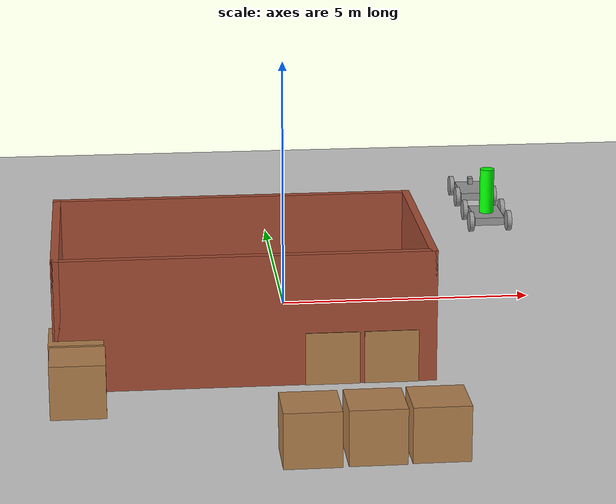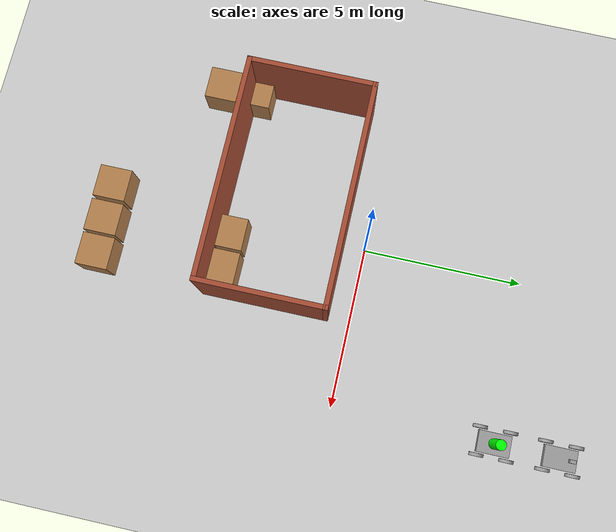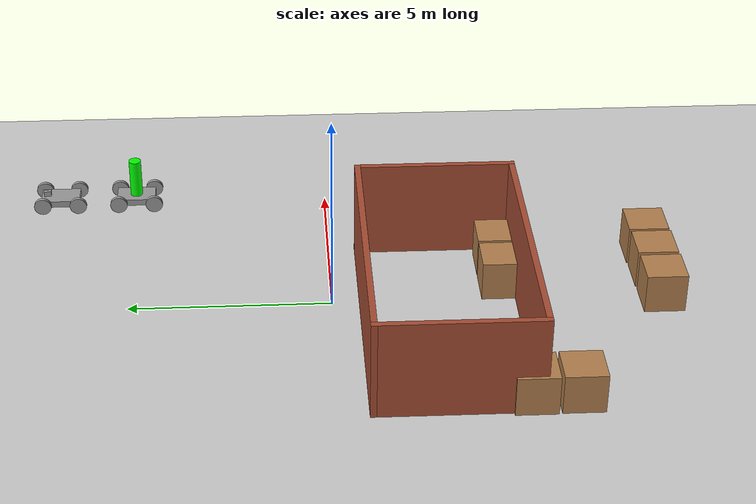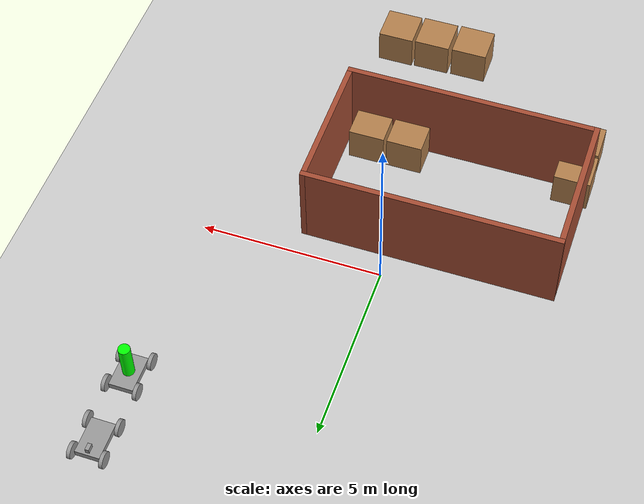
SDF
<sdf version="1.6">
 <world name="default">
  <light name="sun" type="directional">
   <pose>0 0 10 0 -0 0</pose>
   <diffuse>0.8 0.8 0.8 1</diffuse>
   <specular>0.2 0.2 0.2 1</specular>
   <attenuation>
    <range>1000</range>
    <constant>0.9</constant>
    <linear>0.01</linear>
    <quadratic>0.001</quadratic>
   </attenuation>
   <direction>-0.5 0.1 -0.9</direction>
  </light>
  <model name="ground_plane">
   <static>1</static>
   <link name="link">
    <collision name="collision">
     <geometry><plane><normal>0 0 1</normal><size>100 100</size></plane></geometry>
     <surface>
      <contact><collide_bitmask>65535</collide_bitmask></contact>
      <friction><ode><mu>100</mu><mu2>50</mu2></ode></friction>
     </surface>
    </collision>
    <visual name="visual">
     <cast_shadows>0</cast_shadows>
     <geometry><plane><normal>0 0 1</normal><size>100 100</size></plane></geometry>
     <material>
      <script><uri>file://media/materials/scripts/gazebo.material</uri><name>Gazebo/Grey</name></script>
     </material>
    </visual>
   </link>
  </model>
  <gravity>0 0 -9.8</gravity>
  <magnetic_field>6e-06 2.3e-05 -4.2e-05</magnetic_field>
  <atmosphere type="adiabatic"/>
  <physics name="default_physics" default="0" type="ode">
   <max_step_size>0.001</max_step_size>
   <real_time_factor>1</real_time_factor>
   <real_time_update_rate>1000</real_time_update_rate>
  </physics>
  <scene><ambient>0.4 0.4 0.4 1</ambient><background>0.7 0.7 0.7 1</background><shadows>1</shadows></scene>
  <audio><device>default</device></audio>
  <spherical_coordinates>
   <surface_model>EARTH_WGS84</surface_model>
   <latitude_deg>0</latitude_deg>
   <longitude_deg>0</longitude_deg>
   <elevation>0</elevation>
   <heading_deg>0</heading_deg>
  </spherical_coordinates>
  <include><name>nemo</name><pose>5 5 0.23 0 0 0</pose><uri>model://nemo</uri></include>
  <include><name>marlin</name><pose>5 7 0.23 0 0 0</pose><uri>model://marlin</uri></include>
  <include><name>house</name><uri>model://house</uri></include>
  <include><name>box1</name><pose>1.975860 -8.020435 0.500000 0 0 0</pose><uri>model://wood_box</uri></include>
  <include><name>box2</name><pose>0.893759 -8.048310 0.500000 0 0 0</pose><uri>model://wood_box</uri></include>
  <include><name>box3</name><pose>-0.210951 -8.069660 0.500000 0 0 0</pose><uri>model://wood_box</uri></include>
  <include><name>box4</name><pose>-4.115360 -5.482795 0.500000 0 0 0</pose><uri>model://wood_box</uri></include>
  <include><name>box5</name><pose>-4.138615 -4.409820 0.500000 0 0 0</pose><uri>model://wood_box</uri></include>
  <include><name>box6</name><pose>0.525398 -4.174735 0.500000 0 0 0</pose><uri>model://wood_box</uri></include>
  <include><name>box7</name><pose>1.610120 -4.172115 0.500000 0 0 0</pose><uri>model://wood_box</uri></include>
 </world>
</sdf>

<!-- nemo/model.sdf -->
<sdf version='1.6'>
  <model name='nemo'>
    <link name='link_1'>
      <inertial>
        <mass>5</mass>
        <inertia>
          <ixx>0.428684</ixx>
          <ixy>0</ixy>
          <ixz>0</ixz>
          <iyy>0.190336</iyy>
          <iyz>0</iyz>
          <izz>0.594986</izz>
        </inertia>
        <pose frame=''>0 0 0 0 -0 0</pose>
      </inertial>
      <pose frame=''>-0 0.00914 -0.007545 0 -0 0</pose>
      <gravity>1</gravity>
      <self_collide>0</self_collide>
      <kinematic>0</kinematic>
      <enable_wind>0</enable_wind>
      <visual name='visual'>
        <pose frame=''>0 0 0 0 -0 0</pose>
        <geometry>
          <box>
            <size>0.654191 1 0.169826</size>
          </box>
        </geometry>
        <material>
          <lighting>1</lighting>
          <script>
            <uri>file://media/materials/scripts/gazebo.material</uri>
            <name>Gazebo/Grey</name>
          </script>
          <shader type='vertex'>
            <normal_map>__default__</normal_map>
          </shader>
          <ambient>0.3 0.3 0.3 1</ambient>
          <diffuse>0.7 0.7 0.7 1</diffuse>
          <specular>0.01 0.01 0.01 1</specular>
          <emissive>0 0 0 1</emissive>
        </material>
        <transparency>0</transparency>
        <cast_shadows>1</cast_shadows>
      </visual>
      <collision name='collision'>
        <laser_retro>0</laser_retro>
        <max_contacts>10</max_contacts>
        <pose frame=''>0 0 0 0 -0 0</pose>
        <geometry>
          <box>
            <size>0.654191 1 0.169826</size>
          </box>
        </geometry>
        <surface>
          <friction>
            <ode>
              <mu>1</mu>
              <mu2>1</mu2>
              <fdir1>0 0 0</fdir1>
              <slip1>0</slip1>
              <slip2>0</slip2>
            </ode>
            <torsional>
              <coefficient>1</coefficient>
              <patch_radius>0</patch_radius>
              <surface_radius>0</surface_radius>
              <use_patch_radius>1</use_patch_radius>
              <ode>
                <slip>0</slip>
              </ode>
            </torsional>
          </friction>
          <bounce>
            <restitution_coefficient>0</restitution_coefficient>
            <threshold>1e+06</threshold>
          </bounce>
          <contact>
            <collide_without_contact>0</collide_without_contact>
            <collide_without_contact_bitmask>1</collide_without_contact_bitmask>
            <collide_bitmask>1</collide_bitmask>
            <ode>
              <soft_cfm>0</soft_cfm>
              <soft_erp>0.2</soft_erp>
              <kp>1e+13</kp>
              <kd>1</kd>
              <max_vel>0.01</max_vel>
              <min_depth>0</min_depth>
            </ode>
            <bullet>
              <split_impulse>1</split_impulse>
              <split_impulse_penetration_threshold>-0.01</split_impulse_penetration_threshold>
              <soft_cfm>0</soft_cfm>
              <soft_erp>0.2</soft_erp>
              <kp>1e+13</kp>
              <kd>1</kd>
            </bullet>
          </contact>
        </surface>
      </collision>
    </link>
    <link name='link_0'>
      <inertial>
        <mass>0.0998699</mass>
        <inertia>
          <ixx>0.00894577</ixx>
          <ixy>0</ixy>
          <ixz>0</ixz>
          <iyy>0.00894577</iyy>
          <iyz>0</iyz>
          <izz>0.00124656</izz>
        </inertia>
        <pose frame=''>0 0 0 0 -0 0</pose>
      </inertial>
      <pose frame=''>-0 -0 0.577368 0 1e-06 -1e-05</pose>
      <gravity>1</gravity>
      <self_collide>0</self_collide>
      <kinematic>0</kinematic>
      <enable_wind>0</enable_wind>
      <visual name='visual'>
        <pose frame=''>0 0 0 0 -0 0</pose>
        <geometry>
          <cylinder>
            <radius>0.157999</radius>
            <length>1</length>
          </cylinder>
        </geometry>
        <material>
          <lighting>1</lighting>
          <script>
            <uri>file://media/materials/scripts/gazebo.material</uri>
            <name>Gazebo/Grey</name>
          </script>
          <shader type='vertex'>
            <normal_map>__default__</normal_map>
          </shader>
          <ambient>0 1 0 1</ambient>
          <diffuse>0.7 0.7 0.7 1</diffuse>
          <specular>0.01 0.01 0.01 1</specular>
          <emissive>0 0 0 1</emissive>
        </material>
        <transparency>0</transparency>
        <cast_shadows>1</cast_shadows>
      </visual>
      <collision name='collision'>
        <laser_retro>0</laser_retro>
        <max_contacts>10</max_contacts>
        <pose frame=''>0 0 0 0 -0 0</pose>
        <geometry>
          <cylinder>
            <radius>0.157999</radius>
            <length>1</length>
          </cylinder>
        </geometry>
        <surface>
          <friction>
            <ode>
              <mu>1</mu>
              <mu2>1</mu2>
              <fdir1>0 0 0</fdir1>
              <slip1>0</slip1>
              <slip2>0</slip2>
            </ode>
            <torsional>
              <coefficient>1</coefficient>
              <patch_radius>0</patch_radius>
              <surface_radius>0</surface_radius>
              <use_patch_radius>1</use_patch_radius>
              <ode>
                <slip>0</slip>
              </ode>
            </torsional>
          </friction>
          <bounce>
            <restitution_coefficient>0</restitution_coefficient>
            <threshold>1e+06</threshold>
          </bounce>
          <contact>
            <collide_without_contact>0</collide_without_contact>
            <collide_without_contact_bitmask>1</collide_without_contact_bitmask>
            <collide_bitmask>1</collide_bitmask>
            <ode>
              <soft_cfm>0</soft_cfm>
              <soft_erp>0.2</soft_erp>
              <kp>1e+13</kp>
              <kd>1</kd>
              <max_vel>0.01</max_vel>
              <min_depth>0</min_depth>
            </ode>
            <bullet>
              <split_impulse>1</split_impulse>
              <split_impulse_penetration_threshold>-0.01</split_impulse_penetration_threshold>
              <soft_cfm>0</soft_cfm>
              <soft_erp>0.2</soft_erp>
              <kp>1e+13</kp>
              <kd>1</kd>
            </bullet>
          </contact>
        </surface>
      </collision>
    </link>
    <link name='link_2'>
      <inertial>
        <mass>1</mass>
        <inertia>
          <ixx>0.0131563</ixx>
          <ixy>0</ixy>
          <ixz>0</ixz>
          <iyy>0.0131563</iyy>
          <iyz>0</iyz>
          <izz>0.0247202</izz>
        </inertia>
        <pose frame=''>0 0 0 0 -0 0</pose>
      </inertial>
      <pose frame=''>0.422661 -0.451098 0.001886 -3.14159 -1.57079 -3e-06</pose>
      <gravity>1</gravity>
      <self_collide>0</self_collide>
      <kinematic>0</kinematic>
      <enable_wind>0</enable_wind>
      <visual name='visual'>
        <pose frame=''>0 0 0 0 -0 0</pose>
        <geometry>
          <cylinder>
            <radius>0.222352</radius>
            <length>0.0977479</length>
          </cylinder>
        </geometry>
        <material>
          <lighting>1</lighting>
          <script>
            <uri>file://media/materials/scripts/gazebo.material</uri>
            <name>Gazebo/Grey</name>
          </script>
          <shader type='vertex'>
            <normal_map>__default__</normal_map>
          </shader>
          <ambient>0.3 0.3 0.3 1</ambient>
          <diffuse>0.7 0.7 0.7 1</diffuse>
          <specular>0.01 0.01 0.01 1</specular>
          <emissive>0 0 0 1</emissive>
        </material>
        <transparency>0</transparency>
        <cast_shadows>1</cast_shadows>
      </visual>
      <collision name='collision'>
        <laser_retro>0</laser_retro>
        <max_contacts>10</max_contacts>
        <pose frame=''>0 0 0 0 -0 0</pose>
        <geometry>
          <cylinder>
            <radius>0.222352</radius>
            <length>0.097748</length>
          </cylinder>
        </geometry>
        <surface>
          <friction>
            <ode>
              <mu>1</mu>
              <mu2>1</mu2>
              <fdir1>0 0 0</fdir1>
              <slip1>0</slip1>
              <slip2>0</slip2>
            </ode>
            <torsional>
              <coefficient>1</coefficient>
              <patch_radius>0</patch_radius>
              <surface_radius>0</surface_radius>
              <use_patch_radius>1</use_patch_radius>
              <ode>
                <slip>0</slip>
              </ode>
            </torsional>
          </friction>
          <bounce>
            <restitution_coefficient>0</restitution_coefficient>
            <threshold>1e+06</threshold>
          </bounce>
          <contact>
            <collide_without_contact>0</collide_without_contact>
            <collide_without_contact_bitmask>1</collide_without_contact_bitmask>
            <collide_bitmask>1</collide_bitmask>
            <ode>
              <soft_cfm>0</soft_cfm>
              <soft_erp>0.2</soft_erp>
              <kp>1e+13</kp>
              <kd>1</kd>
              <max_vel>0.01</max_vel>
              <min_depth>0</min_depth>
            </ode>
            <bullet>
              <split_impulse>1</split_impulse>
              <split_impulse_penetration_threshold>-0.01</split_impulse_penetration_threshold>
              <soft_cfm>0</soft_cfm>
              <soft_erp>0.2</soft_erp>
              <kp>1e+13</kp>
              <kd>1</kd>
            </bullet>
          </contact>
        </surface>
      </collision>
    </link>
    <link name='link_2_clone'>
      <inertial>
        <mass>1</mass>
        <inertia>
          <ixx>0.0131563</ixx>
          <ixy>0</ixy>
          <ixz>0</ixz>
          <iyy>0.0131563</iyy>
          <iyz>0</iyz>
          <izz>0.0247202</izz>
        </inertia>
        <pose frame=''>0 0 0 0 -0 0</pose>
      </inertial>
      <pose frame=''>-0.422661 0.457533 0.001886 -3.14159 -1.57079 -3e-06</pose>
      <gravity>1</gravity>
      <self_collide>0</self_collide>
      <kinematic>0</kinematic>
      <enable_wind>0</enable_wind>
      <visual name='visual'>
        <pose frame=''>0 0 0 0 -0 0</pose>
        <geometry>
          <cylinder>
            <radius>0.222352</radius>
            <length>0.0977479</length>
          </cylinder>
        </geometry>
        <material>
          <lighting>1</lighting>
          <script>
            <uri>file://media/materials/scripts/gazebo.material</uri>
            <name>Gazebo/Grey</name>
          </script>
          <shader type='vertex'>
            <normal_map>__default__</normal_map>
          </shader>
          <ambient>0.3 0.3 0.3 1</ambient>
          <diffuse>0.7 0.7 0.7 1</diffuse>
          <specular>0.01 0.01 0.01 1</specular>
          <emissive>0 0 0 1</emissive>
        </material>
        <transparency>0</transparency>
        <cast_shadows>1</cast_shadows>
      </visual>
      <collision name='collision'>
        <laser_retro>0</laser_retro>
        <max_contacts>10</max_contacts>
        <pose frame=''>0 0 0 0 -0 0</pose>
        <geometry>
          <cylinder>
            <radius>0.222352</radius>
            <length>0.097748</length>
          </cylinder>
        </geometry>
        <surface>
          <friction>
            <ode>
              <mu>1</mu>
              <mu2>1</mu2>
              <fdir1>0 0 0</fdir1>
              <slip1>0</slip1>
              <slip2>0</slip2>
            </ode>
            <torsional>
              <coefficient>1</coefficient>
              <patch_radius>0</patch_radius>
              <surface_radius>0</surface_radius>
              <use_patch_radius>1</use_patch_radius>
              <ode>
                <slip>0</slip>
              </ode>
            </torsional>
          </friction>
          <bounce>
            <restitution_coefficient>0</restitution_coefficient>
            <threshold>1e+06</threshold>
          </bounce>
          <contact>
            <collide_without_contact>0</collide_without_contact>
            <collide_without_contact_bitmask>1</collide_without_contact_bitmask>
            <collide_bitmask>1</collide_bitmask>
            <ode>
              <soft_cfm>0</soft_cfm>
              <soft_erp>0.2</soft_erp>
              <kp>1e+13</kp>
              <kd>1</kd>
              <max_vel>0.01</max_vel>
              <min_depth>0</min_depth>
            </ode>
            <bullet>
              <split_impulse>1</split_impulse>
              <split_impulse_penetration_threshold>-0.01</split_impulse_penetration_threshold>
              <soft_cfm>0</soft_cfm>
              <soft_erp>0.2</soft_erp>
              <kp>1e+13</kp>
              <kd>1</kd>
            </bullet>
          </contact>
        </surface>
      </collision>
    </link>
    <link name='link_2_clone_0'>
      <inertial>
        <mass>1</mass>
        <inertia>
          <ixx>0.0131563</ixx>
          <ixy>0</ixy>
          <ixz>0</ixz>
          <iyy>0.0131563</iyy>
          <iyz>0</iyz>
          <izz>0.0247202</izz>
        </inertia>
        <pose frame=''>0 0 0 0 -0 0</pose>
      </inertial>
      <pose frame=''>-0.422661 -0.473107 0.001886 -3.14159 -1.57079 -3e-06</pose>
      <gravity>1</gravity>
      <self_collide>0</self_collide>
      <kinematic>0</kinematic>
      <enable_wind>0</enable_wind>
      <visual name='visual'>
        <pose frame=''>0 0 0 0 -0 0</pose>
        <geometry>
          <cylinder>
            <radius>0.222352</radius>
            <length>0.0977479</length>
          </cylinder>
        </geometry>
        <material>
          <lighting>1</lighting>
          <script>
            <uri>file://media/materials/scripts/gazebo.material</uri>
            <name>Gazebo/Grey</name>
          </script>
          <shader type='vertex'>
            <normal_map>__default__</normal_map>
          </shader>
          <ambient>0.3 0.3 0.3 1</ambient>
          <diffuse>0.7 0.7 0.7 1</diffuse>
          <specular>0.01 0.01 0.01 1</specular>
          <emissive>0 0 0 1</emissive>
        </material>
        <transparency>0</transparency>
        <cast_shadows>1</cast_shadows>
      </visual>
      <collision name='collision'>
        <laser_retro>0</laser_retro>
        <max_contacts>10</max_contacts>
        <pose frame=''>0 0 0 0 -0 0</pose>
        <geometry>
          <cylinder>
            <radius>0.222352</radius>
            <length>0.097748</length>
          </cylinder>
        </geometry>
        <surface>
          <friction>
            <ode>
              <mu>1</mu>
              <mu2>1</mu2>
              <fdir1>0 0 0</fdir1>
              <slip1>0</slip1>
              <slip2>0</slip2>
            </ode>
            <torsional>
              <coefficient>1</coefficient>
              <patch_radius>0</patch_radius>
              <surface_radius>0</surface_radius>
              <use_patch_radius>1</use_patch_radius>
              <ode>
                <slip>0</slip>
              </ode>
            </torsional>
          </friction>
          <bounce>
            <restitution_coefficient>0</restitution_coefficient>
            <threshold>1e+06</threshold>
          </bounce>
          <contact>
            <collide_without_contact>0</collide_without_contact>
            <collide_without_contact_bitmask>1</collide_without_contact_bitmask>
            <collide_bitmask>1</collide_bitmask>
            <ode>
              <soft_cfm>0</soft_cfm>
              <soft_erp>0.2</soft_erp>
              <kp>1e+13</kp>
              <kd>1</kd>
              <max_vel>0.01</max_vel>
              <min_depth>0</min_depth>
            </ode>
            <bullet>
              <split_impulse>1</split_impulse>
              <split_impulse_penetration_threshold>-0.01</split_impulse_penetration_threshold>
              <soft_cfm>0</soft_cfm>
              <soft_erp>0.2</soft_erp>
              <kp>1e+13</kp>
              <kd>1</kd>
            </bullet>
          </contact>
        </surface>
      </collision>
    </link>
    <link name='link_2_clone_clone'>
      <inertial>
        <mass>1</mass>
        <inertia>
          <ixx>0.0131563</ixx>
          <ixy>0</ixy>
          <ixz>0</ixz>
          <iyy>0.0131563</iyy>
          <iyz>0</iyz>
          <izz>0.0247202</izz>
        </inertia>
        <pose frame=''>0 0 0 0 -0 0</pose>
      </inertial>
      <pose frame=''>0.422661 0.457533 0.001886 -3.14159 -1.57079 -3e-06</pose>
      <gravity>1</gravity>
      <self_collide>0</self_collide>
      <kinematic>0</kinematic>
      <enable_wind>0</enable_wind>
      <visual name='visual'>
        <pose frame=''>0 0 0 0 -0 0</pose>
        <geometry>
          <cylinder>
            <radius>0.222352</radius>
            <length>0.0977479</length>
          </cylinder>
        </geometry>
        <material>
          <lighting>1</lighting>
          <script>
            <uri>file://media/materials/scripts/gazebo.material</uri>
            <name>Gazebo/Grey</name>
          </script>
          <shader type='vertex'>
            <normal_map>__default__</normal_map>
          </shader>
          <ambient>0.3 0.3 0.3 1</ambient>
          <diffuse>0.7 0.7 0.7 1</diffuse>
          <specular>0.01 0.01 0.01 1</specular>
          <emissive>0 0 0 1</emissive>
        </material>
        <transparency>0</transparency>
        <cast_shadows>1</cast_shadows>
      </visual>
      <collision name='collision'>
        <laser_retro>0</laser_retro>
        <max_contacts>10</max_contacts>
        <pose frame=''>0 0 0 0 -0 0</pose>
        <geometry>
          <cylinder>
            <radius>0.222352</radius>
            <length>0.097748</length>
          </cylinder>
        </geometry>
        <surface>
          <friction>
            <ode>
              <mu>1</mu>
              <mu2>1</mu2>
              <fdir1>0 0 0</fdir1>
              <slip1>0</slip1>
              <slip2>0</slip2>
            </ode>
            <torsional>
              <coefficient>1</coefficient>
              <patch_radius>0</patch_radius>
              <surface_radius>0</surface_radius>
              <use_patch_radius>1</use_patch_radius>
              <ode>
                <slip>0</slip>
              </ode>
            </torsional>
          </friction>
          <bounce>
            <restitution_coefficient>0</restitution_coefficient>
            <threshold>1e+06</threshold>
          </bounce>
          <contact>
            <collide_without_contact>0</collide_without_contact>
            <collide_without_contact_bitmask>1</collide_without_contact_bitmask>
            <collide_bitmask>1</collide_bitmask>
            <ode>
              <soft_cfm>0</soft_cfm>
              <soft_erp>0.2</soft_erp>
              <kp>1e+13</kp>
              <kd>1</kd>
              <max_vel>0.01</max_vel>
              <min_depth>0</min_depth>
            </ode>
            <bullet>
              <split_impulse>1</split_impulse>
              <split_impulse_penetration_threshold>-0.01</split_impulse_penetration_threshold>
              <soft_cfm>0</soft_cfm>
              <soft_erp>0.2</soft_erp>
              <kp>1e+13</kp>
              <kd>1</kd>
            </bullet>
          </contact>
        </surface>
      </collision>
    </link>
    <joint name='link_0_JOINT_0' type='fixed'>
      <parent>link_0</parent>
      <child>link_1</child>
      <pose frame=''>0 0 0 0 -0 0</pose>
      <physics>
        <ode>
          <limit>
            <cfm>0</cfm>
            <erp>0.2</erp>
          </limit>
          <suspension>
            <cfm>0</cfm>
            <erp>0.2</erp>
          </suspension>
        </ode>
      </physics>
    </joint>
    <joint name='link_1_JOINT_0' type='revolute'>
      <parent>link_1</parent>
      <child>link_2_clone_clone</child>
      <pose frame=''>0 0 0 0 -0 0</pose>
      <axis>
        <xyz>0 0 1</xyz>
        <use_parent_model_frame>0</use_parent_model_frame>
        <limit>
          <lower>-1.79769e+308</lower>
          <upper>1.79769e+308</upper>
          <effort>-1</effort>
          <velocity>-1</velocity>
        </limit>
        <dynamics>
          <spring_reference>0</spring_reference>
          <spring_stiffness>0</spring_stiffness>
          <damping>0</damping>
          <friction>0</friction>
        </dynamics>
      </axis>
      <physics>
        <ode>
          <limit>
            <cfm>0</cfm>
            <erp>0.2</erp>
          </limit>
          <suspension>
            <cfm>0</cfm>
            <erp>0.2</erp>
          </suspension>
        </ode>
      </physics>
    </joint>
    <joint name='link_1_JOINT_1' type='revolute'>
      <parent>link_1</parent>
      <child>link_2</child>
      <pose frame=''>0 0 0 0 -0 0</pose>
      <axis>
        <xyz>0 0 1</xyz>
        <use_parent_model_frame>0</use_parent_model_frame>
        <limit>
          <lower>-1.79769e+308</lower>
          <upper>1.79769e+308</upper>
          <effort>-1</effort>
          <velocity>-1</velocity>
        </limit>
        <dynamics>
          <spring_reference>0</spring_reference>
          <spring_stiffness>0</spring_stiffness>
          <damping>0</damping>
          <friction>0</friction>
        </dynamics>
      </axis>
      <physics>
        <ode>
          <limit>
            <cfm>0</cfm>
            <erp>0.2</erp>
          </limit>
          <suspension>
            <cfm>0</cfm>
            <erp>0.2</erp>
          </suspension>
        </ode>
      </physics>
    </joint>
    <joint name='link_1_JOINT_2' type='revolute'>
      <parent>link_1</parent>
      <child>link_2_clone</child>
      <pose frame=''>0 0 0 0 -0 0</pose>
      <axis>
        <xyz>0 0 1</xyz>
        <use_parent_model_frame>0</use_parent_model_frame>
        <limit>
          <lower>-1.79769e+308</lower>
          <upper>1.79769e+308</upper>
          <effort>-1</effort>
          <velocity>-1</velocity>
        </limit>
        <dynamics>
          <spring_reference>0</spring_reference>
          <spring_stiffness>0</spring_stiffness>
          <damping>0</damping>
          <friction>0</friction>
        </dynamics>
      </axis>
      <physics>
        <ode>
          <limit>
            <cfm>0</cfm>
            <erp>0.2</erp>
          </limit>
          <suspension>
            <cfm>0</cfm>
            <erp>0.2</erp>
          </suspension>
        </ode>
      </physics>
    </joint>
    <joint name='link_1_JOINT_3' type='revolute'>
      <parent>link_1</parent>
      <child>link_2_clone_0</child>
      <pose frame=''>0 0 0 0 -0 0</pose>
      <axis>
        <xyz>0 0 1</xyz>
        <use_parent_model_frame>0</use_parent_model_frame>
        <limit>
          <lower>-1.79769e+308</lower>
          <upper>1.79769e+308</upper>
          <effort>-1</effort>
          <velocity>-1</velocity>
        </limit>
        <dynamics>
          <spring_reference>0</spring_reference>
          <spring_stiffness>0</spring_stiffness>
          <damping>0</damping>
          <friction>0</friction>
        </dynamics>
      </axis>
      <physics>
        <ode>
          <limit>
            <cfm>0</cfm>
            <erp>0.2</erp>
          </limit>
          <suspension>
            <cfm>0</cfm>
            <erp>0.2</erp>
          </suspension>
        </ode>
      </physics>
    </joint>
    <static>0</static>
    <allow_auto_disable>1</allow_auto_disable>
    <plugin name='object_controller' filename='libgazebo_ros_planar_move.so'>
      <commandTopic>vel_nemo</commandTopic>
      <odometryTopic>odom_nemo</odometryTopic>
      <odometryFrame>odom_nemo</odometryFrame>
      <odometryRate>20.0</odometryRate>
      <robotBaseFrame></robotBaseFrame>
    </plugin>
  </model>
</sdf>

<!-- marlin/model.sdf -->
<sdf version='1.6'>
  <model name='marlin'>
    <link name='link_1'>
      <inertial>
        <mass>5</mass>
        <inertia>
          <ixx>0.428684</ixx>
          <ixy>0</ixy>
          <ixz>0</ixz>
          <iyy>0.190336</iyy>
          <iyz>0</iyz>
          <izz>0.594986</izz>
        </inertia>
        <pose frame=''>0 0 0 0 -0 0</pose>
      </inertial>
      <pose frame=''>-0 0.00914 -0.007545 0 -0 0</pose>
      <gravity>1</gravity>
      <self_collide>0</self_collide>
      <kinematic>0</kinematic>
      <enable_wind>0</enable_wind>
      <visual name='visual'>
        <pose frame=''>0 0 0 0 -0 0</pose>
        <geometry>
          <box>
            <size>0.654191 1 0.169826</size>
          </box>
        </geometry>
        <material>
          <lighting>1</lighting>
          <script>
            <uri>file://media/materials/scripts/gazebo.material</uri>
            <name>Gazebo/Grey</name>
          </script>
          <shader type='vertex'>
            <normal_map>__default__</normal_map>
          </shader>
          <ambient>0.3 0.3 0.3 1</ambient>
          <diffuse>0.7 0.7 0.7 1</diffuse>
          <specular>0.01 0.01 0.01 1</specular>
          <emissive>0 0 0 1</emissive>
        </material>
        <transparency>0</transparency>
        <cast_shadows>1</cast_shadows>
      </visual>
      <collision name='collision'>
        <laser_retro>0</laser_retro>
        <max_contacts>10</max_contacts>
        <pose frame=''>0 0 0 0 -0 0</pose>
        <geometry>
          <box>
            <size>0.654191 1 0.169826</size>
          </box>
        </geometry>
        <surface>
          <friction>
            <ode>
              <mu>1</mu>
              <mu2>1</mu2>
              <fdir1>0 0 0</fdir1>
              <slip1>0</slip1>
              <slip2>0</slip2>
            </ode>
            <torsional>
              <coefficient>1</coefficient>
              <patch_radius>0</patch_radius>
              <surface_radius>0</surface_radius>
              <use_patch_radius>1</use_patch_radius>
              <ode>
                <slip>0</slip>
              </ode>
            </torsional>
          </friction>
          <bounce>
            <restitution_coefficient>0</restitution_coefficient>
            <threshold>1e+06</threshold>
          </bounce>
          <contact>
            <collide_without_contact>0</collide_without_contact>
            <collide_without_contact_bitmask>1</collide_without_contact_bitmask>
            <collide_bitmask>1</collide_bitmask>
            <ode>
              <soft_cfm>0</soft_cfm>
              <soft_erp>0.2</soft_erp>
              <kp>1e+13</kp>
              <kd>1</kd>
              <max_vel>0.01</max_vel>
              <min_depth>0</min_depth>
            </ode>
            <bullet>
              <split_impulse>1</split_impulse>
              <split_impulse_penetration_threshold>-0.01</split_impulse_penetration_threshold>
              <soft_cfm>0</soft_cfm>
              <soft_erp>0.2</soft_erp>
              <kp>1e+13</kp>
              <kd>1</kd>
            </bullet>
          </contact>
        </surface>
      </collision>
    </link>
    <link name='camera_link'>
      <inertial>
        <mass>0.00311427</mass>
        <inertia>
          <ixx>9.31086e-06</ixx>
          <ixy>0</ixy>
          <ixz>0</ixz>
          <iyy>1.57288e-05</iyy>
          <iyz>0</iyz>
          <izz>1.20857e-05</izz>
        </inertia>
        <pose frame=''>0 0 0 0 -0 1.57079632</pose>
      </inertial>
      <sensor name='camera1' type='camera'>
        <camera name="head">
          <horizontal_fov>1.3962634</horizontal_fov>
          <image>
            <width>1280</width>
            <height>720</height>
            <format>R8G8B8</format>
          </image>
          <clip>
            <near>0.02</near>
            <far>300</far>
          </clip>
        </camera>
        <always_on>1</always_on>
        <update_rate>15</update_rate>
        <visualize>1</visualize>
        <plugin name="camera_controller" filename="libgazebo_ros_camera.so">
        <alwaysOn>true</alwaysOn>
        <updateRate>0.0</updateRate>
        <cameraName>camera</cameraName>
        <imageTopicName>image_raw</imageTopicName>
        <cameraInfoTopicName>camera_info</cameraInfoTopicName>
        <frameName>camera_link</frameName>
        <hackBaseline>0.07</hackBaseline>
        <distortionK1>0.0</distortionK1>
        <distortionK2>0.0</distortionK2>
        <distortionK3>0.0</distortionK3>
        <distortionT1>0.0</distortionT1>
        <distortionT2>0.0</distortionT2>
      </plugin>
      </sensor>
      <pose frame=''>0.007573 0.353081 0.141239 0 1e-06 1.57079632</pose>
      <visual name='visual'>
        <pose frame=''>0 0 0 0 -0 0</pose>
        <geometry>
          <box>
            <size>0.188811 0.104497 0.157979</size>
          </box>
        </geometry>
        <material>
          <lighting>1</lighting>
          <script>
            <uri>file://media/materials/scripts/gazebo.material</uri>
            <name>Gazebo/Grey</name>
          </script>
          <emissive>0 0 0 1</emissive>
        </material>
        <transparency>0</transparency>
        <cast_shadows>1</cast_shadows>
      </visual>
      <collision name='collision'>
        <laser_retro>0</laser_retro>
        <max_contacts>10</max_contacts>
        <pose frame=''>0 0 0 0 -0 0</pose>
        <geometry>
          <box>
            <size>0.188811 0.104497 0.157979</size>
          </box>
        </geometry>
        <surface>
          <friction>
            <ode>
              <mu>1</mu>
              <mu2>1</mu2>
              <fdir1>0 0 0</fdir1>
              <slip1>0</slip1>
              <slip2>0</slip2>
            </ode>
            <torsional>
              <coefficient>1</coefficient>
              <patch_radius>0</patch_radius>
              <surface_radius>0</surface_radius>
              <use_patch_radius>1</use_patch_radius>
              <ode>
                <slip>0</slip>
              </ode>
            </torsional>
          </friction>
          <bounce>
            <restitution_coefficient>0</restitution_coefficient>
            <threshold>1e+06</threshold>
          </bounce>
          <contact>
            <collide_without_contact>0</collide_without_contact>
            <collide_without_contact_bitmask>1</collide_without_contact_bitmask>
            <collide_bitmask>1</collide_bitmask>
            <ode>
              <soft_cfm>0</soft_cfm>
              <soft_erp>0.2</soft_erp>
              <kp>1e+13</kp>
              <kd>1</kd>
              <max_vel>0.01</max_vel>
              <min_depth>0</min_depth>
            </ode>
            <bullet>
              <split_impulse>1</split_impulse>
              <split_impulse_penetration_threshold>-0.01</split_impulse_penetration_threshold>
              <soft_cfm>0</soft_cfm>
              <soft_erp>0.2</soft_erp>
              <kp>1e+13</kp>
              <kd>1</kd>
            </bullet>
          </contact>
        </surface>
      </collision>
    </link>
    <link name='link_2'>
      <inertial>
        <mass>1</mass>
        <inertia>
          <ixx>0.0131563</ixx>
          <ixy>0</ixy>
          <ixz>0</ixz>
          <iyy>0.0131563</iyy>
          <iyz>0</iyz>
          <izz>0.0247202</izz>
        </inertia>
        <pose frame=''>0 0 0 0 -0 0</pose>
      </inertial>
      <pose frame=''>0.422661 -0.451098 0.001886 -3.14159 -1.57079 -3e-06</pose>
      <gravity>1</gravity>
      <self_collide>0</self_collide>
      <kinematic>0</kinematic>
      <enable_wind>0</enable_wind>
      <visual name='visual'>
        <pose frame=''>0 0 0 0 -0 0</pose>
        <geometry>
          <cylinder>
            <radius>0.222352</radius>
            <length>0.0977479</length>
          </cylinder>
        </geometry>
        <material>
          <lighting>1</lighting>
          <script>
            <uri>file://media/materials/scripts/gazebo.material</uri>
            <name>Gazebo/Grey</name>
          </script>
          <shader type='vertex'>
            <normal_map>__default__</normal_map>
          </shader>
          <ambient>0.3 0.3 0.3 1</ambient>
          <diffuse>0.7 0.7 0.7 1</diffuse>
          <specular>0.01 0.01 0.01 1</specular>
          <emissive>0 0 0 1</emissive>
        </material>
        <transparency>0</transparency>
        <cast_shadows>1</cast_shadows>
      </visual>
      <collision name='collision'>
        <laser_retro>0</laser_retro>
        <max_contacts>10</max_contacts>
        <pose frame=''>0 0 0 0 -0 0</pose>
        <geometry>
          <cylinder>
            <radius>0.222352</radius>
            <length>0.097748</length>
          </cylinder>
        </geometry>
        <surface>
          <friction>
            <ode>
              <mu>1</mu>
              <mu2>1</mu2>
              <fdir1>0 0 0</fdir1>
              <slip1>0</slip1>
              <slip2>0</slip2>
            </ode>
            <torsional>
              <coefficient>1</coefficient>
              <patch_radius>0</patch_radius>
              <surface_radius>0</surface_radius>
              <use_patch_radius>1</use_patch_radius>
              <ode>
                <slip>0</slip>
              </ode>
            </torsional>
          </friction>
          <bounce>
            <restitution_coefficient>0</restitution_coefficient>
            <threshold>1e+06</threshold>
          </bounce>
          <contact>
            <collide_without_contact>0</collide_without_contact>
            <collide_without_contact_bitmask>1</collide_without_contact_bitmask>
            <collide_bitmask>1</collide_bitmask>
            <ode>
              <soft_cfm>0</soft_cfm>
              <soft_erp>0.2</soft_erp>
              <kp>1e+13</kp>
              <kd>1</kd>
              <max_vel>0.01</max_vel>
              <min_depth>0</min_depth>
            </ode>
            <bullet>
              <split_impulse>1</split_impulse>
              <split_impulse_penetration_threshold>-0.01</split_impulse_penetration_threshold>
              <soft_cfm>0</soft_cfm>
              <soft_erp>0.2</soft_erp>
              <kp>1e+13</kp>
              <kd>1</kd>
            </bullet>
          </contact>
        </surface>
      </collision>
    </link>
    <link name='link_2_clone'>
      <inertial>
        <mass>1</mass>
        <inertia>
          <ixx>0.0131563</ixx>
          <ixy>0</ixy>
          <ixz>0</ixz>
          <iyy>0.0131563</iyy>
          <iyz>0</iyz>
          <izz>0.0247202</izz>
        </inertia>
        <pose frame=''>0 0 0 0 -0 0</pose>
      </inertial>
      <pose frame=''>-0.422661 0.457533 0.001886 -3.14159 -1.57079 -3e-06</pose>
      <gravity>1</gravity>
      <self_collide>0</self_collide>
      <kinematic>0</kinematic>
      <enable_wind>0</enable_wind>
      <visual name='visual'>
        <pose frame=''>0 0 0 0 -0 0</pose>
        <geometry>
          <cylinder>
            <radius>0.222352</radius>
            <length>0.0977479</length>
          </cylinder>
        </geometry>
        <material>
          <lighting>1</lighting>
          <script>
            <uri>file://media/materials/scripts/gazebo.material</uri>
            <name>Gazebo/Grey</name>
          </script>
          <shader type='vertex'>
            <normal_map>__default__</normal_map>
          </shader>
          <ambient>0.3 0.3 0.3 1</ambient>
          <diffuse>0.7 0.7 0.7 1</diffuse>
          <specular>0.01 0.01 0.01 1</specular>
          <emissive>0 0 0 1</emissive>
        </material>
        <transparency>0</transparency>
        <cast_shadows>1</cast_shadows>
      </visual>
      <collision name='collision'>
        <laser_retro>0</laser_retro>
        <max_contacts>10</max_contacts>
        <pose frame=''>0 0 0 0 -0 0</pose>
        <geometry>
          <cylinder>
            <radius>0.222352</radius>
            <length>0.097748</length>
          </cylinder>
        </geometry>
        <surface>
          <friction>
            <ode>
              <mu>1</mu>
              <mu2>1</mu2>
              <fdir1>0 0 0</fdir1>
              <slip1>0</slip1>
              <slip2>0</slip2>
            </ode>
            <torsional>
              <coefficient>1</coefficient>
              <patch_radius>0</patch_radius>
              <surface_radius>0</surface_radius>
              <use_patch_radius>1</use_patch_radius>
              <ode>
                <slip>0</slip>
              </ode>
            </torsional>
          </friction>
          <bounce>
            <restitution_coefficient>0</restitution_coefficient>
            <threshold>1e+06</threshold>
          </bounce>
          <contact>
            <collide_without_contact>0</collide_without_contact>
            <collide_without_contact_bitmask>1</collide_without_contact_bitmask>
            <collide_bitmask>1</collide_bitmask>
            <ode>
              <soft_cfm>0</soft_cfm>
              <soft_erp>0.2</soft_erp>
              <kp>1e+13</kp>
              <kd>1</kd>
              <max_vel>0.01</max_vel>
              <min_depth>0</min_depth>
            </ode>
            <bullet>
              <split_impulse>1</split_impulse>
              <split_impulse_penetration_threshold>-0.01</split_impulse_penetration_threshold>
              <soft_cfm>0</soft_cfm>
              <soft_erp>0.2</soft_erp>
              <kp>1e+13</kp>
              <kd>1</kd>
            </bullet>
          </contact>
        </surface>
      </collision>
    </link>
    <link name='link_2_clone_0'>
      <inertial>
        <mass>1</mass>
        <inertia>
          <ixx>0.0131563</ixx>
          <ixy>0</ixy>
          <ixz>0</ixz>
          <iyy>0.0131563</iyy>
          <iyz>0</iyz>
          <izz>0.0247202</izz>
        </inertia>
        <pose frame=''>0 0 0 0 -0 0</pose>
      </inertial>
      <pose frame=''>-0.422661 -0.473107 0.001886 -3.14159 -1.57079 -3e-06</pose>
      <gravity>1</gravity>
      <self_collide>0</self_collide>
      <kinematic>0</kinematic>
      <enable_wind>0</enable_wind>
      <visual name='visual'>
        <pose frame=''>0 0 0 0 -0 0</pose>
        <geometry>
          <cylinder>
            <radius>0.222352</radius>
            <length>0.0977479</length>
          </cylinder>
        </geometry>
        <material>
          <lighting>1</lighting>
          <script>
            <uri>file://media/materials/scripts/gazebo.material</uri>
            <name>Gazebo/Grey</name>
          </script>
          <shader type='vertex'>
            <normal_map>__default__</normal_map>
          </shader>
          <ambient>0.3 0.3 0.3 1</ambient>
          <diffuse>0.7 0.7 0.7 1</diffuse>
          <specular>0.01 0.01 0.01 1</specular>
          <emissive>0 0 0 1</emissive>
        </material>
        <transparency>0</transparency>
        <cast_shadows>1</cast_shadows>
      </visual>
      <collision name='collision'>
        <laser_retro>0</laser_retro>
        <max_contacts>10</max_contacts>
        <pose frame=''>0 0 0 0 -0 0</pose>
        <geometry>
          <cylinder>
            <radius>0.222352</radius>
            <length>0.097748</length>
          </cylinder>
        </geometry>
        <surface>
          <friction>
            <ode>
              <mu>1</mu>
              <mu2>1</mu2>
              <fdir1>0 0 0</fdir1>
              <slip1>0</slip1>
              <slip2>0</slip2>
            </ode>
            <torsional>
              <coefficient>1</coefficient>
              <patch_radius>0</patch_radius>
              <surface_radius>0</surface_radius>
              <use_patch_radius>1</use_patch_radius>
              <ode>
                <slip>0</slip>
              </ode>
            </torsional>
          </friction>
          <bounce>
            <restitution_coefficient>0</restitution_coefficient>
            <threshold>1e+06</threshold>
          </bounce>
          <contact>
            <collide_without_contact>0</collide_without_contact>
            <collide_without_contact_bitmask>1</collide_without_contact_bitmask>
            <collide_bitmask>1</collide_bitmask>
            <ode>
              <soft_cfm>0</soft_cfm>
              <soft_erp>0.2</soft_erp>
              <kp>1e+13</kp>
              <kd>1</kd>
              <max_vel>0.01</max_vel>
              <min_depth>0</min_depth>
            </ode>
            <bullet>
              <split_impulse>1</split_impulse>
              <split_impulse_penetration_threshold>-0.01</split_impulse_penetration_threshold>
              <soft_cfm>0</soft_cfm>
              <soft_erp>0.2</soft_erp>
              <kp>1e+13</kp>
              <kd>1</kd>
            </bullet>
          </contact>
        </surface>
      </collision>
    </link>
    <link name='link_2_clone_clone'>
      <inertial>
        <mass>1</mass>
        <inertia>
          <ixx>0.0131563</ixx>
          <ixy>0</ixy>
          <ixz>0</ixz>
          <iyy>0.0131563</iyy>
          <iyz>0</iyz>
          <izz>0.0247202</izz>
        </inertia>
        <pose frame=''>0 0 0 0 -0 0</pose>
      </inertial>
      <pose frame=''>0.422661 0.457533 0.001886 -3.14159 -1.57079 -3e-06</pose>
      <gravity>1</gravity>
      <self_collide>0</self_collide>
      <kinematic>0</kinematic>
      <enable_wind>0</enable_wind>
      <visual name='visual'>
        <pose frame=''>0 0 0 0 -0 0</pose>
        <geometry>
          <cylinder>
            <radius>0.222352</radius>
            <length>0.0977479</length>
          </cylinder>
        </geometry>
        <material>
          <lighting>1</lighting>
          <script>
            <uri>file://media/materials/scripts/gazebo.material</uri>
            <name>Gazebo/Grey</name>
          </script>
          <shader type='vertex'>
            <normal_map>__default__</normal_map>
          </shader>
          <ambient>0.3 0.3 0.3 1</ambient>
          <diffuse>0.7 0.7 0.7 1</diffuse>
          <specular>0.01 0.01 0.01 1</specular>
          <emissive>0 0 0 1</emissive>
        </material>
        <transparency>0</transparency>
        <cast_shadows>1</cast_shadows>
      </visual>
      <collision name='collision'>
        <laser_retro>0</laser_retro>
        <max_contacts>10</max_contacts>
        <pose frame=''>0 0 0 0 -0 0</pose>
        <geometry>
          <cylinder>
            <radius>0.222352</radius>
            <length>0.097748</length>
          </cylinder>
        </geometry>
        <surface>
          <friction>
            <ode>
              <mu>1</mu>
              <mu2>1</mu2>
              <fdir1>0 0 0</fdir1>
              <slip1>0</slip1>
              <slip2>0</slip2>
            </ode>
            <torsional>
              <coefficient>1</coefficient>
              <patch_radius>0</patch_radius>
              <surface_radius>0</surface_radius>
              <use_patch_radius>1</use_patch_radius>
              <ode>
                <slip>0</slip>
              </ode>
            </torsional>
          </friction>
          <bounce>
            <restitution_coefficient>0</restitution_coefficient>
            <threshold>1e+06</threshold>
          </bounce>
          <contact>
            <collide_without_contact>0</collide_without_contact>
            <collide_without_contact_bitmask>1</collide_without_contact_bitmask>
            <collide_bitmask>1</collide_bitmask>
            <ode>
              <soft_cfm>0</soft_cfm>
              <soft_erp>0.2</soft_erp>
              <kp>1e+13</kp>
              <kd>1</kd>
              <max_vel>0.01</max_vel>
              <min_depth>0</min_depth>
            </ode>
            <bullet>
              <split_impulse>1</split_impulse>
              <split_impulse_penetration_threshold>-0.01</split_impulse_penetration_threshold>
              <soft_cfm>0</soft_cfm>
              <soft_erp>0.2</soft_erp>
              <kp>1e+13</kp>
              <kd>1</kd>
            </bullet>
          </contact>
        </surface>
      </collision>
    </link>
    <joint name='camera_link_JOINT_1' type='fixed'>
      <parent>camera_link</parent>
      <child>link_1</child>
      <pose frame=''>0 0 0 0 -0 0</pose>
      <physics>
        <ode>
          <limit>
            <cfm>0</cfm>
            <erp>0.2</erp>
          </limit>
          <suspension>
            <cfm>0</cfm>
            <erp>0.2</erp>
          </suspension>
        </ode>
      </physics>
    </joint>
    <joint name='link_1_JOINT_0' type='revolute'>
      <parent>link_1</parent>
      <child>link_2_clone_clone</child>
      <pose frame=''>0 0 0 0 -0 0</pose>
      <axis>
        <xyz>0 0 1</xyz>
        <use_parent_model_frame>0</use_parent_model_frame>
        <limit>
          <lower>-1.79769e+308</lower>
          <upper>1.79769e+308</upper>
          <effort>-1</effort>
          <velocity>-1</velocity>
        </limit>
        <dynamics>
          <spring_reference>0</spring_reference>
          <spring_stiffness>0</spring_stiffness>
          <damping>0</damping>
          <friction>0</friction>
        </dynamics>
      </axis>
      <physics>
        <ode>
          <limit>
            <cfm>0</cfm>
            <erp>0.2</erp>
          </limit>
          <suspension>
            <cfm>0</cfm>
            <erp>0.2</erp>
          </suspension>
        </ode>
      </physics>
    </joint>
    <joint name='link_1_JOINT_1' type='revolute'>
      <parent>link_1</parent>
      <child>link_2</child>
      <pose frame=''>0 0 0 0 -0 0</pose>
      <axis>
        <xyz>0 0 1</xyz>
        <use_parent_model_frame>0</use_parent_model_frame>
        <limit>
          <lower>-1.79769e+308</lower>
          <upper>1.79769e+308</upper>
          <effort>-1</effort>
          <velocity>-1</velocity>
        </limit>
        <dynamics>
          <spring_reference>0</spring_reference>
          <spring_stiffness>0</spring_stiffness>
          <damping>0</damping>
          <friction>0</friction>
        </dynamics>
      </axis>
      <physics>
        <ode>
          <limit>
            <cfm>0</cfm>
            <erp>0.2</erp>
          </limit>
          <suspension>
            <cfm>0</cfm>
            <erp>0.2</erp>
          </suspension>
        </ode>
      </physics>
    </joint>
    <joint name='link_1_JOINT_2' type='revolute'>
      <parent>link_1</parent>
      <child>link_2_clone</child>
      <pose frame=''>0 0 0 0 -0 0</pose>
      <axis>
        <xyz>0 0 1</xyz>
        <use_parent_model_frame>0</use_parent_model_frame>
        <limit>
          <lower>-1.79769e+308</lower>
          <upper>1.79769e+308</upper>
          <effort>-1</effort>
          <velocity>-1</velocity>
        </limit>
        <dynamics>
          <spring_reference>0</spring_reference>
          <spring_stiffness>0</spring_stiffness>
          <damping>0</damping>
          <friction>0</friction>
        </dynamics>
      </axis>
      <physics>
        <ode>
          <limit>
            <cfm>0</cfm>
            <erp>0.2</erp>
          </limit>
          <suspension>
            <cfm>0</cfm>
            <erp>0.2</erp>
          </suspension>
        </ode>
      </physics>
    </joint>
    <joint name='link_1_JOINT_3' type='revolute'>
      <parent>link_1</parent>
      <child>link_2_clone_0</child>
      <pose frame=''>0 0 0 0 -0 0</pose>
      <axis>
        <xyz>0 0 1</xyz>
        <use_parent_model_frame>0</use_parent_model_frame>
        <limit>
          <lower>-1.79769e+308</lower>
          <upper>1.79769e+308</upper>
          <effort>-1</effort>
          <velocity>-1</velocity>
        </limit>
        <dynamics>
          <spring_reference>0</spring_reference>
          <spring_stiffness>0</spring_stiffness>
          <damping>0</damping>
          <friction>0</friction>
        </dynamics>
      </axis>
      <physics>
        <ode>
          <limit>
            <cfm>0</cfm>
            <erp>0.2</erp>
          </limit>
          <suspension>
            <cfm>0</cfm>
            <erp>0.2</erp>
          </suspension>
        </ode>
      </physics>
    </joint>
    <static>0</static>
    <allow_auto_disable>1</allow_auto_disable>
    <plugin name='object_controller' filename='libgazebo_ros_planar_move.so'>
      <commandTopic>cmd_vel</commandTopic>
      <odometryTopic>odom</odometryTopic>
      <odometryFrame>odom</odometryFrame>
      <odometryRate>20.0</odometryRate>
      <robotBaseFrame>base_footprint</robotBaseFrame>
    </plugin>
  </model>
</sdf>

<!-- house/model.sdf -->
<sdf version='1.6'>
  <model name='house'>
    <pose frame=''>-1.055 -2.655 0 0 -0 0</pose>
    <link name='Wall_0'>
      <collision name='Wall_0_Collision'>
        <geometry>
          <box>
            <size>4 0.15 2.5</size>
          </box>
        </geometry>
        <pose frame=''>0 0 1.25 0 -0 0</pose>
      </collision>
      <visual name='Wall_0_Visual'>
        <pose frame=''>0 0 1.25 0 -0 0</pose>
        <geometry>
          <box>
            <size>4 0.15 2.5</size>
          </box>
        </geometry>
        <material>
          <script>
            <uri>file://media/materials/scripts/gazebo.material</uri>
            <name>Gazebo/Bricks</name>
          </script>
          <ambient>1 1 1 1</ambient>
        </material>
        <meta>
          <layer>0</layer>
        </meta>
      </visual>
      <pose frame=''>-3.425 0 0 0 -0 -1.5708</pose>
    </link>
    <link name='Wall_1'>
      <collision name='Wall_1_Collision'>
        <geometry>
          <box>
            <size>7 0.15 2.5</size>
          </box>
        </geometry>
        <pose frame=''>0 0 1.25 0 -0 0</pose>
      </collision>
      <visual name='Wall_1_Visual'>
        <pose frame=''>0 0 1.25 0 -0 0</pose>
        <geometry>
          <box>
            <size>7 0.15 2.5</size>
          </box>
        </geometry>
        <material>
          <script>
            <uri>file://media/materials/scripts/gazebo.material</uri>
            <name>Gazebo/Bricks</name>
          </script>
          <ambient>1 1 1 1</ambient>
        </material>
        <meta>
          <layer>0</layer>
        </meta>
      </visual>
      <pose frame=''>0 -1.925 0 0 -0 0</pose>
    </link>
    <link name='Wall_2'>
      <collision name='Wall_2_Collision'>
        <geometry>
          <box>
            <size>4 0.15 2.5</size>
          </box>
        </geometry>
        <pose frame=''>0 0 1.25 0 -0 0</pose>
      </collision>
      <visual name='Wall_2_Visual'>
        <pose frame=''>0 0 1.25 0 -0 0</pose>
        <geometry>
          <box>
            <size>4 0.15 2.5</size>
          </box>
        </geometry>
        <material>
          <script>
            <uri>file://media/materials/scripts/gazebo.material</uri>
            <name>Gazebo/Bricks</name>
          </script>
          <ambient>1 1 1 1</ambient>
        </material>
        <meta>
          <layer>0</layer>
        </meta>
      </visual>
      <pose frame=''>3.425 0 0 0 -0 1.5708</pose>
    </link>
    <link name='Wall_3'>
      <collision name='Wall_3_Collision'>
        <geometry>
          <box>
            <size>7 0.15 2.5</size>
          </box>
        </geometry>
        <pose frame=''>0 0 1.25 0 -0 0</pose>
      </collision>
      <visual name='Wall_3_Visual'>
        <pose frame=''>0 0 1.25 0 -0 0</pose>
        <geometry>
          <box>
            <size>7 0.15 2.5</size>
          </box>
        </geometry>
        <material>
          <script>
            <uri>file://media/materials/scripts/gazebo.material</uri>
            <name>Gazebo/Bricks</name>
          </script>
          <ambient>1 1 1 1</ambient>
        </material>
        <meta>
          <layer>0</layer>
        </meta>
      </visual>
      <pose frame=''>0 1.925 0 0 -0 3.14159</pose>
    </link>
    <static>1</static>
  </model>
</sdf>

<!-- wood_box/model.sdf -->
<sdf version='1.6'>
  <model name='wood_box'>
    <link name='link'>
      <inertial>
        <mass>1</mass>
        <inertia>
          <ixx>0.166667</ixx>
          <ixy>0</ixy>
          <ixz>0</ixz>
          <iyy>0.166667</iyy>
          <iyz>0</iyz>
          <izz>0.166667</izz>
        </inertia>
        <pose frame=''>0 0 0 0 -0 0</pose>
      </inertial>
      <self_collide>0</self_collide>
      <enable_wind>0</enable_wind>
      <kinematic>0</kinematic>
      <pose frame=''>0 0 0 0 -0 0</pose>
      <gravity>1</gravity>
      <visual name='visual'>
        <geometry>
          <box>
            <size>1 1 1</size>
          </box>
        </geometry>
        <material>
          <script>
            <name>Gazebo/Wood</name>
            <uri>file://media/materials/scripts/gazebo.material</uri>
          </script>
          <shader type='vertex'>
            <normal_map>__default__</normal_map>
          </shader>
          <ambient>1 1 1 1</ambient>
          <diffuse>1 1 1 1</diffuse>
          <specular>0.2 0.2 0.2 1</specular>
          <emissive>0 0 0 1</emissive>
        </material>
        <pose frame=''>0 0 0 0 -0 0</pose>
        <transparency>0</transparency>
        <cast_shadows>1</cast_shadows>
      </visual>
      <collision name='collision'>
        <laser_retro>0</laser_retro>
        <max_contacts>10</max_contacts>
        <pose frame=''>0 0 0 0 -0 0</pose>
        <geometry>
          <box>
            <size>1 1 1</size>
          </box>
        </geometry>
        <surface>
          <friction>
            <ode>
              <mu>1</mu>
              <mu2>1</mu2>
              <fdir1>0 0 0</fdir1>
              <slip1>0</slip1>
              <slip2>0</slip2>
            </ode>
            <torsional>
              <coefficient>1</coefficient>
              <patch_radius>0</patch_radius>
              <surface_radius>0</surface_radius>
              <use_patch_radius>1</use_patch_radius>
              <ode>
                <slip>0</slip>
              </ode>
            </torsional>
          </friction>
          <bounce>
            <restitution_coefficient>0</restitution_coefficient>
            <threshold>1e+06</threshold>
          </bounce>
          <contact>
            <collide_without_contact>0</collide_without_contact>
            <collide_without_contact_bitmask>1</collide_without_contact_bitmask>
            <collide_bitmask>1</collide_bitmask>
            <ode>
              <soft_cfm>0</soft_cfm>
              <soft_erp>0.2</soft_erp>
              <kp>1e+13</kp>
              <kd>1</kd>
              <max_vel>0.01</max_vel>
              <min_depth>0</min_depth>
            </ode>
            <bullet>
              <split_impulse>1</split_impulse>
              <split_impulse_penetration_threshold>-0.01</split_impulse_penetration_threshold>
              <soft_cfm>0</soft_cfm>
              <soft_erp>0.2</soft_erp>
              <kp>1e+13</kp>
              <kd>1</kd>
            </bullet>
          </contact>
        </surface>
      </collision>
    </link>
    <static>0</static>
    <allow_auto_disable>1</allow_auto_disable>
  </model>
</sdf>
